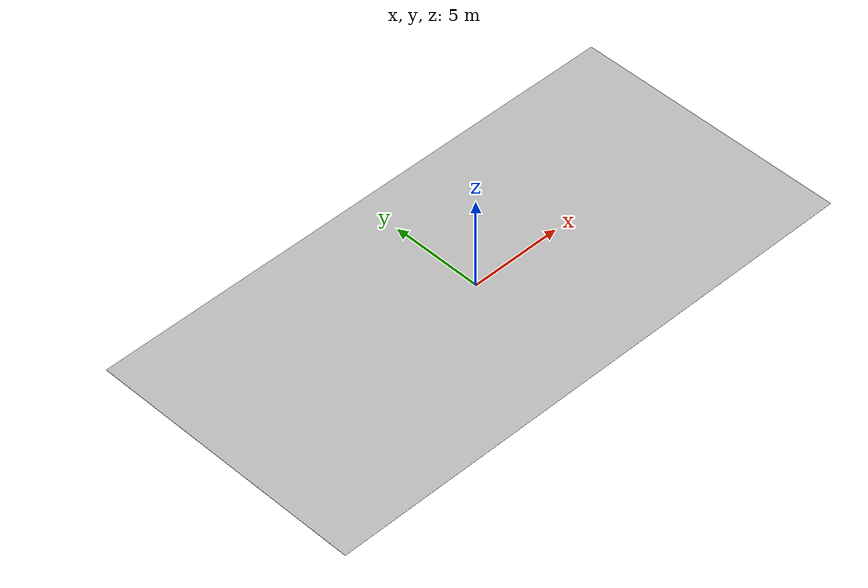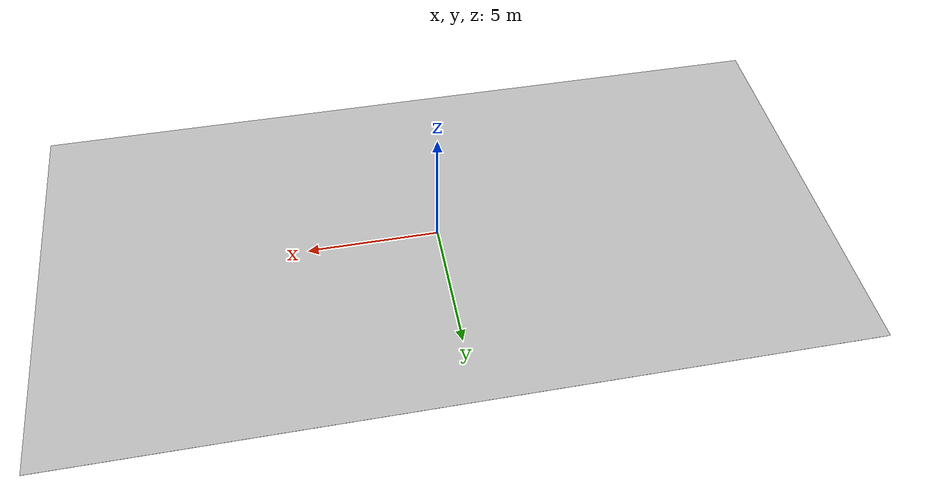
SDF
<?xml version='1.0'?>
<sdf version='1.7'>
  <model name='basketball_court'>
    <pose>0 0 0 0 0 0</pose>
    <static>true</static>
    <link name='link_1'>
      <inertial>
        <mass>1</mass>
        <inertia>
          <ixx>0.166667</ixx>
          <ixy>0</ixy>
          <ixz>0</ixz>
          <iyy>0.166667</iyy>
          <iyz>0</iyz>
          <izz>0.166667</izz>
        </inertia>
        <pose>0 0 0 0 -0 0</pose>
      </inertial>
      <collision name="collision">
        <geometry>
          <box>
            <size>30 15 0.01</size>
          </box>
        </geometry>
      </collision>
      <visual name='visual'>
        <geometry>
          <box>
            <size>30 15 0.01</size>
          </box>
        </geometry>
        <material>
          <script>
            <uri>model://basketball_court/materials/scripts</uri>
            <uri>model://basketball_court/materials/textures</uri>
            <name>Ground/basketball_court</name>
          </script>
        </material>
      </visual>
    </link>
  </model>
</sdf>
